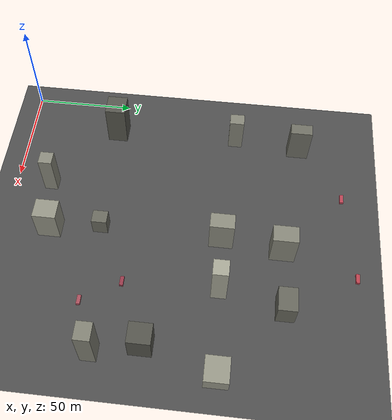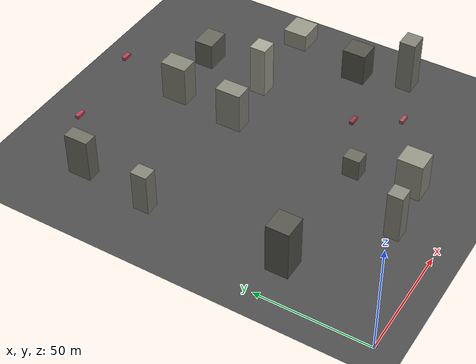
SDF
<sdf version="1.9">
 <world name="urban_world">
  <physics name="1ms" type="ignore">
   <max_step_size>0.001</max_step_size>
   <real_time_factor>1.0</real_time_factor>
  </physics>
  <plugin filename="gz-sim-physics-system" name="gz::sim::systems::Physics"/>
  <plugin filename="gz-sim-sensors-system" name="gz::sim::systems::Sensors">
   <render_engine>ogre2</render_engine>
  </plugin>
  <plugin filename="gz-sim-user-commands-system" name="gz::sim::systems::UserCommands"/>
  <plugin filename="gz-sim-scene-broadcaster-system" name="gz::sim::systems::SceneBroadcaster"/>
  <plugin filename="gz-sim-imu-system" name="gz::sim::systems::Imu"/>
  <plugin filename="gz-sim-navsat-system" name="gz::sim::systems::NavSat"/>
  <scene><ambient>1.0 1.0 1.0</ambient><background>0.6 0.7 0.8</background></scene>
  <spherical_coordinates>
   <latitude_deg>-35.363262</latitude_deg>
   <longitude_deg>149.165237</longitude_deg>
   <elevation>584</elevation>
   <heading_deg>0</heading_deg>
   <surface_model>EARTH_WGS84</surface_model>
  </spherical_coordinates>
  <light type="directional" name="sun">
   <pose>0 0 100 0 0 0</pose>
   <diffuse>0.9 0.9 0.9 1</diffuse>
   <specular>0.8 0.8 0.8 1</specular>
   <attenuation>
    <range>1000</range>
    <constant>0.9</constant>
    <linear>0.01</linear>
    <quadratic>0.001</quadratic>
   </attenuation>
   <direction>-0.5 0.1 -0.9</direction>
  </light>
  <model name="ground_plane">
   <static>true</static>
   <link name="link">
    <collision name="collision">
     <geometry><plane><normal>0 0 1</normal><size>200.0 200.0</size></plane></geometry>
    </collision>
    <visual name="visual">
     <geometry><plane><normal>0 0 1</normal><size>200.0 200.0</size></plane></geometry>
     <material><ambient>0.3 0.3 0.3 1.0</ambient><diffuse>0.3 0.3 0.3 1.0</diffuse></material>
    </visual>
   </link>
  </model>
  <model name="axes">
   <static>true</static>
   <link name="link">
    <visual name="x_axis">
     <cast_shadows>false</cast_shadows>
     <pose>5 0 0.1 0 0 0</pose>
     <geometry><box><size>10 0.05 0.05</size></box></geometry>
     <material><ambient>1 0 0 0.8</ambient><diffuse>1 0 0 0.8</diffuse></material>
    </visual>
    <visual name="y_axis">
     <cast_shadows>false</cast_shadows>
     <pose>0 5 0.1 0 0 0</pose>
     <geometry><box><size>0.05 10 0.05</size></box></geometry>
     <material><ambient>0 1 0 0.8</ambient><diffuse>0 1 0 0.8</diffuse></material>
    </visual>
   </link>
  </model>
  <model name="building_0">
   <static>true</static>
   <pose>17.75029318369119 47.23210738148823 11.583526325491185 0 0 0</pose>
   <link name="link">
    <collision name="collision">
     <geometry><box><size>10.418827284984074 10.060196924537468 23.16705265098237</size></box></geometry>
    </collision>
    <visual name="visual">
     <geometry><box><size>10.418827284984074 10.060196924537468 23.16705265098237</size></box></geometry>
     <material>
      <ambient>0.33477553305176644 0.33477553305176644 0.3012979797465898 1.0</ambient>
      <diffuse>0.33477553305176644 0.33477553305176644 0.3012979797465898 1.0</diffuse>
     </material>
    </visual>
   </link>
  </model>
  <model name="building_1">
   <static>true</static>
   <pose>17.186379748036032 110.05355288103362 9.524017721125947 0 0 0</pose>
   <link name="link">
    <collision name="collision">
     <geometry><box><size>6.159215818103181 7.1930259041198905 19.048035442251894</size></box></geometry>
    </collision>
    <visual name="visual">
     <geometry><box><size>6.159215818103181 7.1930259041198905 19.048035442251894</size></box></geometry>
     <material>
      <ambient>0.5179765922412867 0.5179765922412867 0.466178933017158 1.0</ambient>
      <diffuse>0.5179765922412867 0.5179765922412867 0.466178933017158 1.0</diffuse>
     </material>
    </visual>
   </link>
  </model>
  <model name="building_2">
   <static>true</static>
   <pose>20.892656838759088 143.09430456677828 9.934184857399927 0 0 0</pose>
   <link name="link">
    <collision name="collision">
     <geometry><box><size>6.038992558068366 10.834915510996847 19.868369714799854</size></box></geometry>
    </collision>
    <visual name="visual">
     <geometry><box><size>6.038992558068366 10.834915510996847 19.868369714799854</size></box></geometry>
     <material>
      <ambient>0.4361002066071967 0.4361002066071967 0.39249018594647705 1.0</ambient>
      <diffuse>0.4361002066071967 0.4361002066071967 0.39249018594647705 1.0</diffuse>
     </material>
    </visual>
   </link>
  </model>
  <model name="building_3">
   <static>true</static>
   <pose>54.57213072206781 18.36594545112627 11.203702113953408 0 0 0</pose>
   <link name="link">
    <collision name="collision">
     <geometry><box><size>6.556475060280888 6.5802982610007845 22.407404227906817</size></box></geometry>
    </collision>
    <visual name="visual">
     <geometry><box><size>6.556475060280888 6.5802982610007845 22.407404227906817</size></box></geometry>
     <material>
      <ambient>0.5414904125467563 0.5414904125467563 0.4873413712920807 1.0</ambient>
      <diffuse>0.5414904125467563 0.5414904125467563 0.4873413712920807 1.0</diffuse>
     </material>
    </visual>
   </link>
  </model>
  <model name="building_4">
   <static>true</static>
   <pose>80.52040631273226 23.29404664252995 8.907493234682477 0 0 0</pose>
   <link name="link">
    <collision name="collision">
     <geometry><box><size>9.711118514185475 11.170241401864663 17.814986469364953</size></box></geometry>
    </collision>
    <visual name="visual">
     <geometry><box><size>9.711118514185475 11.170241401864663 17.814986469364953</size></box></geometry>
     <material>
      <ambient>0.5818287344859694 0.5818287344859694 0.5236458610373724 1.0</ambient>
      <diffuse>0.5818287344859694 0.5818287344859694 0.5236458610373724 1.0</diffuse>
     </material>
    </visual>
   </link>
  </model>
  <model name="building_5">
   <static>true</static>
   <pose>77.27898275651548 47.89387963602107 4.8585121499826975 0 0 0</pose>
   <link name="link">
    <collision name="collision">
     <geometry><box><size>6.478751861541765 7.396745318166181 9.717024299965395</size></box></geometry>
    </collision>
    <visual name="visual">
     <geometry><box><size>6.478751861541765 7.396745318166181 9.717024299965395</size></box></geometry>
     <material>
      <ambient>0.41118944124403684 0.41118944124403684 0.37007049711963313 1.0</ambient>
      <diffuse>0.41118944124403684 0.41118944124403684 0.37007049711963313 1.0</diffuse>
     </material>
    </visual>
   </link>
  </model>
  <model name="building_6">
   <static>true</static>
   <pose>78.70180967116883 107.09507030771488 9.508300774596044 0 0 0</pose>
   <link name="link">
    <collision name="collision">
     <geometry><box><size>7.60186693229468 11.619927526274964 19.01660154919209</size></box></geometry>
    </collision>
    <visual name="visual">
     <geometry><box><size>7.60186693229468 11.619927526274964 19.01660154919209</size></box></geometry>
     <material>
      <ambient>0.5436524022667952 0.5436524022667952 0.48928716204011574 1.0</ambient>
      <diffuse>0.5436524022667952 0.5436524022667952 0.48928716204011574 1.0</diffuse>
     </material>
    </visual>
   </link>
  </model>
  <model name="building_7">
   <static>true</static>
   <pose>82.29126797950349 136.63402493761927 9.43999795875979 0 0 0</pose>
   <link name="link">
    <collision name="collision">
     <geometry><box><size>8.276732650545886 11.937140103819571 18.87999591751958</size></box></geometry>
    </collision>
    <visual name="visual">
     <geometry><box><size>8.276732650545886 11.937140103819571 18.87999591751958</size></box></geometry>
     <material>
      <ambient>0.5227798975098584 0.5227798975098584 0.4705019077588726 1.0</ambient>
      <diffuse>0.5227798975098584 0.5227798975098584 0.4705019077588726 1.0</diffuse>
     </material>
    </visual>
   </link>
  </model>
  <model name="building_8">
   <static>true</static>
   <pose>105.32100243904037 108.15453048059082 12.014732571847963 0 0 0</pose>
   <link name="link">
    <collision name="collision">
     <geometry><box><size>7.606445255854217 7.2658970615179586 24.029465143695926</size></box></geometry>
    </collision>
    <visual name="visual">
     <geometry><box><size>7.606445255854217 7.2658970615179586 24.029465143695926</size></box></geometry>
     <material>
      <ambient>0.6505470505890675 0.6505470505890675 0.5854923455301607 1.0</ambient>
      <diffuse>0.6505470505890675 0.6505470505890675 0.5854923455301607 1.0</diffuse>
     </material>
    </visual>
   </link>
  </model>
  <model name="building_9">
   <static>true</static>
   <pose>111.5543866529488 138.95631901060665 6.251481415233446 0 0 0</pose>
   <link name="link">
    <collision name="collision">
     <geometry><box><size>11.487285538443262 8.753111115524392 12.502962830466892</size></box></geometry>
    </collision>
    <visual name="visual">
     <geometry><box><size>11.487285538443262 8.753111115524392 12.502962830466892</size></box></geometry>
     <material>
      <ambient>0.3986510030775934 0.3986510030775934 0.3587859027698341 1.0</ambient>
      <diffuse>0.3986510030775934 0.3986510030775934 0.3587859027698341 1.0</diffuse>
     </material>
    </visual>
   </link>
  </model>
  <model name="building_10">
   <static>true</static>
   <pose>140.84585990223542 53.97822883602477 12.479069655208438 0 0 0</pose>
   <link name="link">
    <collision name="collision">
     <geometry><box><size>8.396403030842384 7.3159245549437 24.958139310416875</size></box></geometry>
    </collision>
    <visual name="visual">
     <geometry><box><size>8.396403030842384 7.3159245549437 24.958139310416875</size></box></geometry>
     <material>
      <ambient>0.5038105174705858 0.5038105174705858 0.4534294657235272 1.0</ambient>
      <diffuse>0.5038105174705858 0.5038105174705858 0.4534294657235272 1.0</diffuse>
     </material>
    </visual>
   </link>
  </model>
  <model name="building_11">
   <static>true</static>
   <pose>135.47116375424736 76.0964913035066 7.5883597177973146 0 0 0</pose>
   <link name="link">
    <collision name="collision">
     <geometry><box><size>9.76467625021854 10.752476186177784 15.176719435594629</size></box></geometry>
    </collision>
    <visual name="visual">
     <geometry><box><size>9.76467625021854 10.752476186177784 15.176719435594629</size></box></geometry>
     <material>
      <ambient>0.3254110824607828 0.3254110824607828 0.29286997421470456 1.0</ambient>
      <diffuse>0.3254110824607828 0.3254110824607828 0.29286997421470456 1.0</diffuse>
     </material>
    </visual>
   </link>
  </model>
  <model name="building_12">
   <static>true</static>
   <pose>144.96121380240098 110.29114345099137 4.097588686513967 0 0 0</pose>
   <link name="link">
    <collision name="collision">
     <geometry><box><size>11.82647026568171 11.164678213406988 8.195177373027933</size></box></geometry>
    </collision>
    <visual name="visual">
     <geometry><box><size>11.82647026568171 11.164678213406988 8.195177373027933</size></box></geometry>
     <material>
      <ambient>0.5882887277440778 0.5882887277440778 0.5294598549696701 1.0</ambient>
      <diffuse>0.5882887277440778 0.5882887277440778 0.5294598549696701 1.0</diffuse>
     </material>
    </visual>
   </link>
  </model>
  <model name="vehicle_0">
   <static>true</static>
   <pose>105.91525286540723 62.69203039240685 0.75 0 0 0</pose>
   <link name="link">
    <collision name="collision"><geometry><box><size>4.5 1.8 1.5</size></box></geometry></collision>
    <visual name="visual">
     <geometry><box><size>4.5 1.8 1.5</size></box></geometry>
     <material>
      <ambient>0.5845770791478849 0.2223104347191753 0.286953050133821 1.0</ambient>
      <diffuse>0.5845770791478849 0.2223104347191753 0.286953050133821 1.0</diffuse>
     </material>
    </visual>
   </link>
  </model>
  <model name="vehicle_1">
   <static>true</static>
   <pose>92.59579301267303 172.61054840337283 0.75 0 0 0</pose>
   <link name="link">
    <collision name="collision"><geometry><box><size>4.5 1.8 1.5</size></box></geometry></collision>
    <visual name="visual">
     <geometry><box><size>4.5 1.8 1.5</size></box></geometry>
     <material>
      <ambient>0.7255117642269164 0.2526778101502182 0.3001172226100597 1.0</ambient>
      <diffuse>0.7255117642269164 0.2526778101502182 0.3001172226100597 1.0</diffuse>
     </material>
    </visual>
   </link>
  </model>
  <model name="vehicle_2">
   <static>true</static>
   <pose>48.58430088482102 166.02045429517128 0.75 0 0 0</pose>
   <link name="link">
    <collision name="collision"><geometry><box><size>4.5 1.8 1.5</size></box></geometry></collision>
    <visual name="visual">
     <geometry><box><size>4.5 1.8 1.5</size></box></geometry>
     <material>
      <ambient>0.7223111419020602 0.2596889582897266 0.32778989897320104 1.0</ambient>
      <diffuse>0.7223111419020602 0.2596889582897266 0.32778989897320104 1.0</diffuse>
     </material>
    </visual>
   </link>
  </model>
  <model name="vehicle_3">
   <static>true</static>
   <pose>117.43523383010756 44.454282967941566 0.75 0 0 0</pose>
   <link name="link">
    <collision name="collision"><geometry><box><size>4.5 1.8 1.5</size></box></geometry></collision>
    <visual name="visual">
     <geometry><box><size>4.5 1.8 1.5</size></box></geometry>
     <material>
      <ambient>0.6575064800450908 0.30787580602392517 0.35572529572611167 1.0</ambient>
      <diffuse>0.6575064800450908 0.30787580602392517 0.35572529572611167 1.0</diffuse>
     </material>
    </visual>
   </link>
  </model>
 </world>
</sdf>
